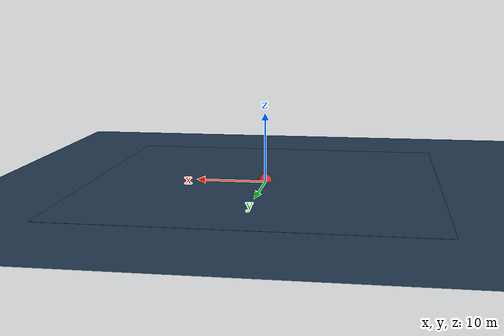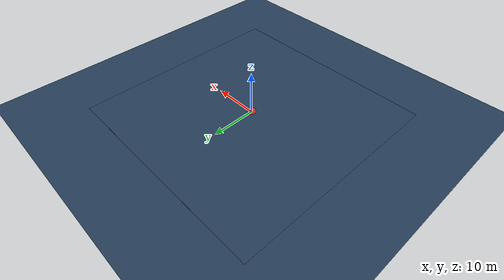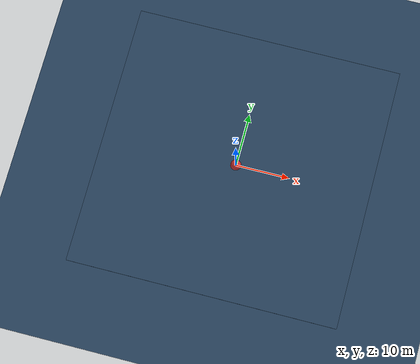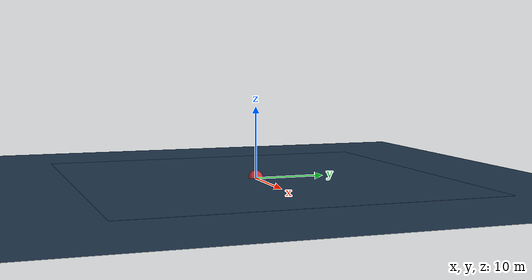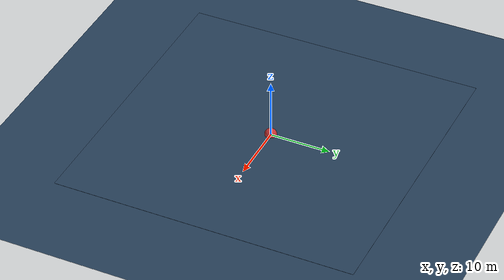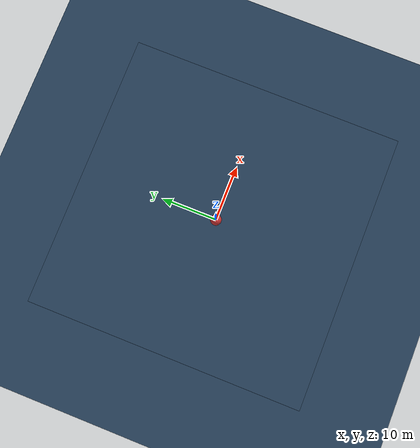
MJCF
<mujoco>
  <asset>
    <texture name="grid" type="2d" builtin="checker" width="300" height="300"
             rgb1="0.2 0.3 0.4" rgb2="0.1 0.2 0.3" mark="edge" markrgb="0.8 0.8 0.8"/>
    <material name="plate_mat" texture="grid" texrepeat="10 10" reflectance="0.2"/>
    <material name="ball_mat" rgba="0.8 0.2 0.2 1"/>
  </asset>

  <option gravity="0 0 -9.81" timestep="0.002"/>

  <worldbody>
    <geom name="ground" type="plane" size="0 0 0.01" material="plate_mat"/>

    <body name="plate" pos="0 0 0.1">
      <joint name="tilt_x" type="hinge" axis="-1 0 0" damping="1"/>
      <joint name="tilt_y" type="hinge" axis="0 1 0" damping="1"/>
      <geom name="plate_surf" type="box" size="25 25 0.01"
            material="plate_mat" friction="0.8 0.02 0.3"/>
    </body>

    <!-- Free bodies must be top-level -->
    <body name="ball" pos="0 0 0.17">
      <joint name="ball_free" type="free"/>
      <geom name="ball_geom" type="sphere" size="1" mass="1"
            material="ball_mat" friction="0.8 0.02 0.1"/>
    </body>
  </worldbody>

  <actuator>
    <motor name="motor_x" joint="tilt_x" ctrlrange="-0.01 0.01"/>
    <motor name="motor_y" joint="tilt_y" ctrlrange="-0.01 0.01"/>
  </actuator>
</mujoco>
